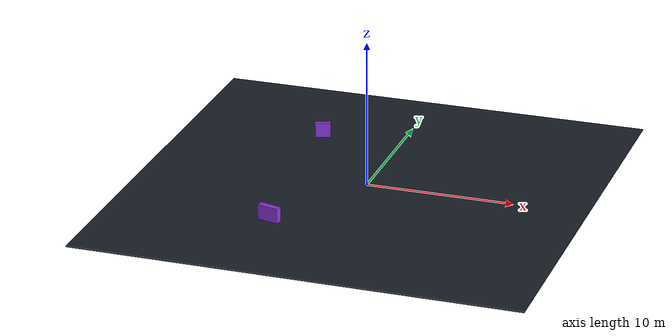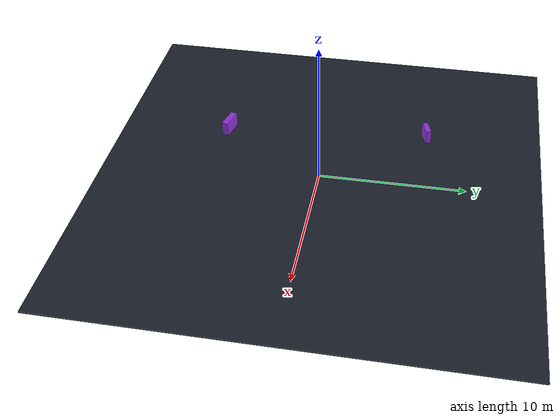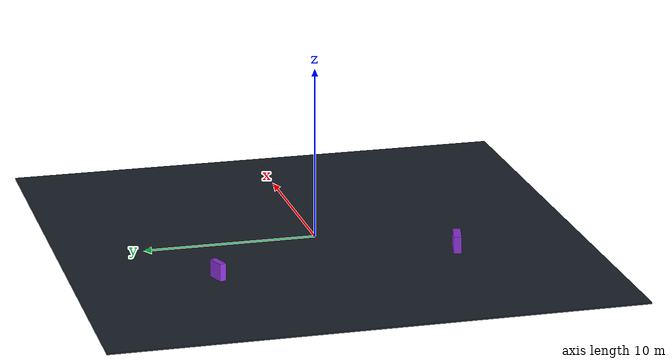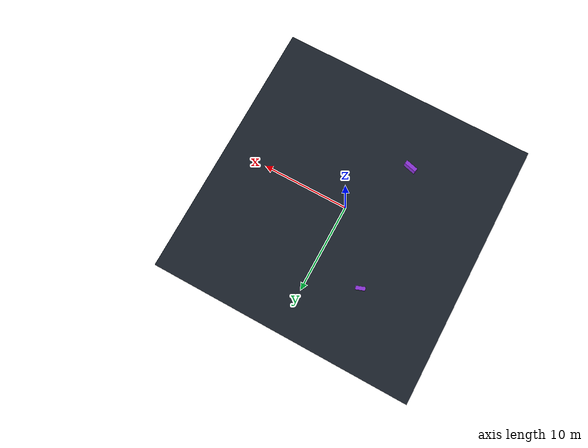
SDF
<sdf version="1.9">
 <world name="loop_course">
  <model name="ground">
   <static>true</static>
   <link name="ground">
    <collision name="ground_collision">
     <pose>0 0 -0.05 0 0 0</pose>
     <geometry><box><size>30 30 0.1</size></box></geometry>
    </collision>
    <visual name="ground_visual">
     <pose>0 0 -0.05 0 0 0</pose>
     <geometry><box><size>30 30 0.1</size></box></geometry>
     <material><ambient>0.105 0.13 0.17 1</ambient><diffuse>0.105 0.13 0.17 1</diffuse></material>
    </visual>
   </link>
  </model>
  <model name="overview_camera">
   <static>true</static>
   <link name="camera_link">
    <pose>21 -28 36 0 0.80 2.21</pose>
    <sensor name="overview" type="camera">
     <topic>/loop/overview</topic>
     <update_rate>1</update_rate>
     <always_on>true</always_on>
     <camera>
      <horizontal_fov>1.05</horizontal_fov>
      <image><width>1280</width><height>900</height><format>R8G8B8</format></image>
      <clip><near>0.1</near><far>60</far></clip>
     </camera>
    </sensor>
   </link>
  </model>
  <model name="obstacle_localization_1">
   <static>true</static>
   <pose>-5.4406577582452105 6.921426475340328 .5 0 0 -2.808129087676947</pose>
   <link name="landmark">
    <collision name="marker"><geometry><box><size>1.05 0.4 1</size></box></geometry></collision>
    <visual name="marker_visual">
     <geometry><box><size>1.05 0.4 1</size></box></geometry>
     <material><ambient>.55 .2 .85 1</ambient><diffuse>.55 .2 .85 1</diffuse></material>
    </visual>
   </link>
  </model>
  <model name="obstacle_localization_2">
   <static>true</static>
   <pose>-4.174344240941754 -7.270033790516941 .5 0 0 -0.247570082065499</pose>
   <link name="landmark">
    <collision name="marker"><geometry><box><size>1.45 0.45 1</size></box></geometry></collision>
    <visual name="marker_visual">
     <geometry><box><size>1.45 0.45 1</size></box></geometry>
     <material><ambient>.55 .2 .85 1</ambient><diffuse>.55 .2 .85 1</diffuse></material>
    </visual>
   </link>
  </model>
 </world>
</sdf>
